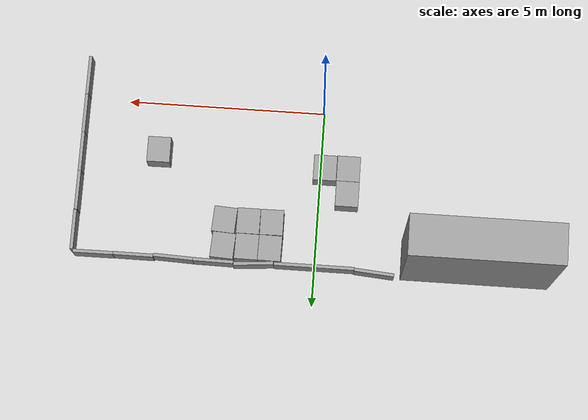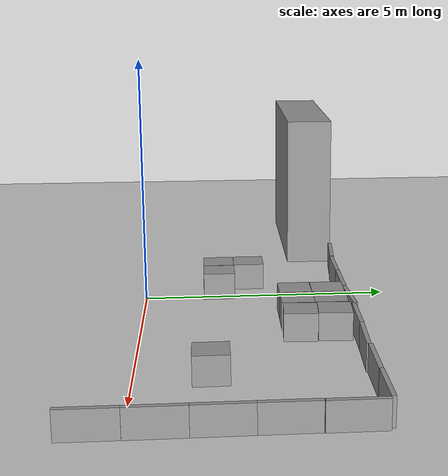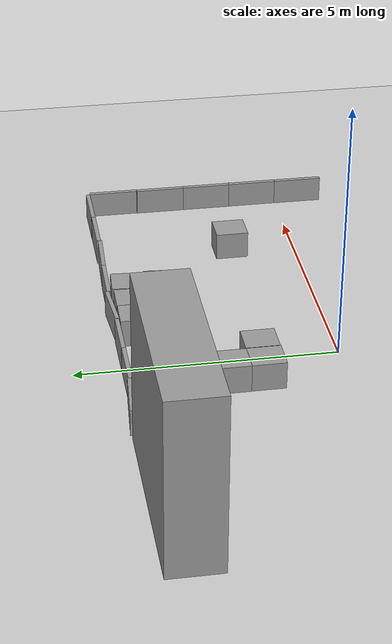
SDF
<sdf version="1.6">
 <world name="default">
  <model name="ground_plane">
   <static>1</static>
   <link name="link">
    <collision name="collision">
     <geometry><plane><normal>0 0 1</normal><size>100 100</size></plane></geometry>
     <surface>
      <contact><collide_bitmask>65535</collide_bitmask></contact>
      <friction><ode><mu>100</mu><mu2>50</mu2></ode></friction>
     </surface>
    </collision>
    <visual name="visual">
     <cast_shadows>0</cast_shadows>
     <geometry><plane><normal>0 0 1</normal><size>100 100</size></plane></geometry>
     <material>
      <script><uri>file://media/materials/scripts/gazebo.material</uri><name>Gazebo/Grey</name></script>
     </material>
    </visual>
   </link>
  </model>
  <model name="panel_5">
   <link name="link">
    <inertial>
     <mass>0.0428479</mass>
     <inertia>
      <ixx>0.00456249</ixx>
      <ixy>0</ixy>
      <ixz>0</ixz>
      <iyy>0.00101543</iyy>
      <iyz>0</iyz>
      <izz>0.00359426</izz>
     </inertia>
    </inertial>
    <pose>-0.996065 -0.479892 0.260289 0 -0 0</pose>
    <visual name="visual">
     <geometry><box><size>0.081299 1 0.527041</size></box></geometry>
     <material>
      <script><name>Gazebo/Grey</name><uri>file://media/materials/scripts/gazebo.material</uri></script>
      <emissive>0 0 0 1</emissive>
      <shader type="vertex"><normal_map>__default__</normal_map></shader>
      <ambient>0.3 0.3 0.3 1</ambient>
      <diffuse>0.7 0.7 0.7 1</diffuse>
      <specular>0.01 0.01 0.01 1</specular>
     </material>
    </visual>
    <collision name="collision">
     <geometry><box><size>0.081299 1 0.527041</size></box></geometry>
     <surface>
      <friction>
       <ode><mu>1</mu><mu2>1</mu2><fdir1>0 0 0</fdir1><slip1>0</slip1><slip2>0</slip2></ode>
       <torsional>
        <coefficient>1</coefficient>
        <patch_radius>0</patch_radius>
        <surface_radius>0</surface_radius>
        <use_patch_radius>1</use_patch_radius>
        <ode><slip>0</slip></ode>
       </torsional>
      </friction>
      <bounce><restitution_coefficient>0</restitution_coefficient><threshold>1e+06</threshold></bounce>
      <contact>
       <collide_without_contact>0</collide_without_contact>
       <collide_without_contact_bitmask>1</collide_without_contact_bitmask>
       <collide_bitmask>1</collide_bitmask>
       <ode>
        <soft_cfm>0</soft_cfm>
        <soft_erp>0.2</soft_erp>
        <kp>1e+13</kp>
        <kd>1</kd>
        <max_vel>0.01</max_vel>
        <min_depth>0</min_depth>
       </ode>
       <bullet>
        <split_impulse>1</split_impulse>
        <split_impulse_penetration_threshold>-0.01</split_impulse_penetration_threshold>
        <soft_cfm>0</soft_cfm>
        <soft_erp>0.2</soft_erp>
        <kp>1e+13</kp>
        <kd>1</kd>
       </bullet>
      </contact>
     </surface>
    </collision>
   </link>
   <static>0</static>
   <allow_auto_disable>0</allow_auto_disable>
   <pose>7.04088 -0.024231 0.003231 1e-06 0 -0.004194</pose>
  </model>
  <model name="panel_6">
   <link name="link">
    <inertial>
     <mass>0.0428479</mass>
     <inertia>
      <ixx>0.00456249</ixx>
      <ixy>0</ixy>
      <ixz>0</ixz>
      <iyy>0.00101543</iyy>
      <iyz>0</iyz>
      <izz>0.00359426</izz>
     </inertia>
    </inertial>
    <pose>-0.996065 -0.479892 0.260289 0 -0 0</pose>
    <visual name="visual">
     <geometry><box><size>0.081299 1 0.527041</size></box></geometry>
     <material>
      <script><name>Gazebo/Grey</name><uri>file://media/materials/scripts/gazebo.material</uri></script>
      <emissive>0 0 0 1</emissive>
      <shader type="vertex"><normal_map>__default__</normal_map></shader>
      <ambient>0.3 0.3 0.3 1</ambient>
      <diffuse>0.7 0.7 0.7 1</diffuse>
      <specular>0.01 0.01 0.01 1</specular>
     </material>
    </visual>
    <collision name="collision">
     <geometry><box><size>0.081299 1 0.527041</size></box></geometry>
     <surface>
      <friction>
       <ode><mu>1</mu><mu2>1</mu2><fdir1>0 0 0</fdir1><slip1>0</slip1><slip2>0</slip2></ode>
       <torsional>
        <coefficient>1</coefficient>
        <patch_radius>0</patch_radius>
        <surface_radius>0</surface_radius>
        <use_patch_radius>1</use_patch_radius>
        <ode><slip>0</slip></ode>
       </torsional>
      </friction>
      <bounce><restitution_coefficient>0</restitution_coefficient><threshold>1e+06</threshold></bounce>
      <contact>
       <collide_without_contact>0</collide_without_contact>
       <collide_without_contact_bitmask>1</collide_without_contact_bitmask>
       <collide_bitmask>1</collide_bitmask>
       <ode>
        <soft_cfm>0</soft_cfm>
        <soft_erp>0.2</soft_erp>
        <kp>1e+13</kp>
        <kd>1</kd>
        <max_vel>0.01</max_vel>
        <min_depth>0</min_depth>
       </ode>
       <bullet>
        <split_impulse>1</split_impulse>
        <split_impulse_penetration_threshold>-0.01</split_impulse_penetration_threshold>
        <soft_cfm>0</soft_cfm>
        <soft_erp>0.2</soft_erp>
        <kp>1e+13</kp>
        <kd>1</kd>
       </bullet>
      </contact>
     </surface>
    </collision>
   </link>
   <static>0</static>
   <allow_auto_disable>0</allow_auto_disable>
   <pose>7.04227 0.98064 0.003225 -6e-06 -0 0.000389</pose>
  </model>
  <model name="panel_7">
   <link name="link">
    <inertial>
     <mass>0.0428479</mass>
     <inertia>
      <ixx>0.00456249</ixx>
      <ixy>0</ixy>
      <ixz>0</ixz>
      <iyy>0.00101543</iyy>
      <iyz>0</iyz>
      <izz>0.00359426</izz>
     </inertia>
    </inertial>
    <pose>-0.996065 -0.479892 0.260289 0 -0 0</pose>
    <visual name="visual">
     <geometry><box><size>0.081299 1 0.527041</size></box></geometry>
     <material>
      <script><name>Gazebo/Grey</name><uri>file://media/materials/scripts/gazebo.material</uri></script>
      <emissive>0 0 0 1</emissive>
      <shader type="vertex"><normal_map>__default__</normal_map></shader>
      <ambient>0.3 0.3 0.3 1</ambient>
      <diffuse>0.7 0.7 0.7 1</diffuse>
      <specular>0.01 0.01 0.01 1</specular>
     </material>
    </visual>
    <collision name="collision">
     <geometry><box><size>0.081299 1 0.527041</size></box></geometry>
     <surface>
      <friction>
       <ode><mu>1</mu><mu2>1</mu2><fdir1>0 0 0</fdir1><slip1>0</slip1><slip2>0</slip2></ode>
       <torsional>
        <coefficient>1</coefficient>
        <patch_radius>0</patch_radius>
        <surface_radius>0</surface_radius>
        <use_patch_radius>1</use_patch_radius>
        <ode><slip>0</slip></ode>
       </torsional>
      </friction>
      <bounce><restitution_coefficient>0</restitution_coefficient><threshold>1e+06</threshold></bounce>
      <contact>
       <collide_without_contact>0</collide_without_contact>
       <collide_without_contact_bitmask>1</collide_without_contact_bitmask>
       <collide_bitmask>1</collide_bitmask>
       <ode>
        <soft_cfm>0</soft_cfm>
        <soft_erp>0.2</soft_erp>
        <kp>1e+13</kp>
        <kd>1</kd>
        <max_vel>0.01</max_vel>
        <min_depth>0</min_depth>
       </ode>
       <bullet>
        <split_impulse>1</split_impulse>
        <split_impulse_penetration_threshold>-0.01</split_impulse_penetration_threshold>
        <soft_cfm>0</soft_cfm>
        <soft_erp>0.2</soft_erp>
        <kp>1e+13</kp>
        <kd>1</kd>
       </bullet>
      </contact>
     </surface>
    </collision>
   </link>
   <static>0</static>
   <allow_auto_disable>0</allow_auto_disable>
   <pose>7.03946 1.98026 0.003231 1e-06 -0 -7.8e-05</pose>
  </model>
  <model name="panel_8">
   <link name="link">
    <inertial>
     <mass>0.0428479</mass>
     <inertia>
      <ixx>0.00456249</ixx>
      <ixy>0</ixy>
      <ixz>0</ixz>
      <iyy>0.00101543</iyy>
      <iyz>0</iyz>
      <izz>0.00359426</izz>
     </inertia>
    </inertial>
    <pose>-0.996065 -0.479892 0.260289 0 -0 0</pose>
    <visual name="visual">
     <geometry><box><size>0.081299 1 0.527041</size></box></geometry>
     <material>
      <script><name>Gazebo/Grey</name><uri>file://media/materials/scripts/gazebo.material</uri></script>
      <emissive>0 0 0 1</emissive>
      <shader type="vertex"><normal_map>__default__</normal_map></shader>
      <ambient>0.3 0.3 0.3 1</ambient>
      <diffuse>0.7 0.7 0.7 1</diffuse>
      <specular>0.01 0.01 0.01 1</specular>
     </material>
    </visual>
    <collision name="collision">
     <geometry><box><size>0.081299 1 0.527041</size></box></geometry>
     <surface>
      <friction>
       <ode><mu>1</mu><mu2>1</mu2><fdir1>0 0 0</fdir1><slip1>0</slip1><slip2>0</slip2></ode>
       <torsional>
        <coefficient>1</coefficient>
        <patch_radius>0</patch_radius>
        <surface_radius>0</surface_radius>
        <use_patch_radius>1</use_patch_radius>
        <ode><slip>0</slip></ode>
       </torsional>
      </friction>
      <bounce><restitution_coefficient>0</restitution_coefficient><threshold>1e+06</threshold></bounce>
      <contact>
       <collide_without_contact>0</collide_without_contact>
       <collide_without_contact_bitmask>1</collide_without_contact_bitmask>
       <collide_bitmask>1</collide_bitmask>
       <ode>
        <soft_cfm>0</soft_cfm>
        <soft_erp>0.2</soft_erp>
        <kp>1e+13</kp>
        <kd>1</kd>
        <max_vel>0.01</max_vel>
        <min_depth>0</min_depth>
       </ode>
       <bullet>
        <split_impulse>1</split_impulse>
        <split_impulse_penetration_threshold>-0.01</split_impulse_penetration_threshold>
        <soft_cfm>0</soft_cfm>
        <soft_erp>0.2</soft_erp>
        <kp>1e+13</kp>
        <kd>1</kd>
       </bullet>
      </contact>
     </surface>
    </collision>
   </link>
   <static>0</static>
   <allow_auto_disable>0</allow_auto_disable>
   <pose>7.03923 2.97769 0.003227 -4e-06 -0 -0.002794</pose>
  </model>
  <model name="panel_13">
   <link name="link">
    <inertial>
     <mass>0.0428479</mass>
     <inertia>
      <ixx>0.00456249</ixx>
      <ixy>0</ixy>
      <ixz>0</ixz>
      <iyy>0.00101543</iyy>
      <iyz>0</iyz>
      <izz>0.00359426</izz>
     </inertia>
    </inertial>
    <pose>-0.996065 -0.479892 0.260289 0 -0 0</pose>
    <visual name="visual">
     <geometry><box><size>0.081299 1 0.527041</size></box></geometry>
     <material>
      <script><name>Gazebo/Grey</name><uri>file://media/materials/scripts/gazebo.material</uri></script>
      <emissive>0 0 0 1</emissive>
      <shader type="vertex"><normal_map>__default__</normal_map></shader>
      <ambient>0.3 0.3 0.3 1</ambient>
      <diffuse>0.7 0.7 0.7 1</diffuse>
      <specular>0.01 0.01 0.01 1</specular>
     </material>
    </visual>
    <collision name="collision">
     <geometry><box><size>0.081299 1 0.527041</size></box></geometry>
     <surface>
      <friction>
       <ode><mu>1</mu><mu2>1</mu2><fdir1>0 0 0</fdir1><slip1>0</slip1><slip2>0</slip2></ode>
       <torsional>
        <coefficient>1</coefficient>
        <patch_radius>0</patch_radius>
        <surface_radius>0</surface_radius>
        <use_patch_radius>1</use_patch_radius>
        <ode><slip>0</slip></ode>
       </torsional>
      </friction>
      <bounce><restitution_coefficient>0</restitution_coefficient><threshold>1e+06</threshold></bounce>
      <contact>
       <collide_without_contact>0</collide_without_contact>
       <collide_without_contact_bitmask>1</collide_without_contact_bitmask>
       <collide_bitmask>1</collide_bitmask>
       <ode>
        <soft_cfm>0</soft_cfm>
        <soft_erp>0.2</soft_erp>
        <kp>1e+13</kp>
        <kd>1</kd>
        <max_vel>0.01</max_vel>
        <min_depth>0</min_depth>
       </ode>
       <bullet>
        <split_impulse>1</split_impulse>
        <split_impulse_penetration_threshold>-0.01</split_impulse_penetration_threshold>
        <soft_cfm>0</soft_cfm>
        <soft_erp>0.2</soft_erp>
        <kp>1e+13</kp>
        <kd>1</kd>
       </bullet>
      </contact>
     </surface>
    </collision>
   </link>
   <static>0</static>
   <allow_auto_disable>0</allow_auto_disable>
   <pose>5.03022 5.04748 0.003232 1e-06 -0 1.57241</pose>
  </model>
  <model name="panel_14">
   <link name="link">
    <inertial>
     <mass>0.0428479</mass>
     <inertia>
      <ixx>0.00456249</ixx>
      <ixy>0</ixy>
      <ixz>0</ixz>
      <iyy>0.00101543</iyy>
      <iyz>0</iyz>
      <izz>0.00359426</izz>
     </inertia>
    </inertial>
    <pose>-0.996065 -0.479892 0.260289 0 -0 0</pose>
    <visual name="visual">
     <geometry><box><size>0.081299 1 0.527041</size></box></geometry>
     <material>
      <script><name>Gazebo/Grey</name><uri>file://media/materials/scripts/gazebo.material</uri></script>
      <emissive>0 0 0 1</emissive>
      <shader type="vertex"><normal_map>__default__</normal_map></shader>
      <ambient>0.3 0.3 0.3 1</ambient>
      <diffuse>0.7 0.7 0.7 1</diffuse>
      <specular>0.01 0.01 0.01 1</specular>
     </material>
    </visual>
    <collision name="collision">
     <geometry><box><size>0.081299 1 0.527041</size></box></geometry>
     <surface>
      <friction>
       <ode><mu>1</mu><mu2>1</mu2><fdir1>0 0 0</fdir1><slip1>0</slip1><slip2>0</slip2></ode>
       <torsional>
        <coefficient>1</coefficient>
        <patch_radius>0</patch_radius>
        <surface_radius>0</surface_radius>
        <use_patch_radius>1</use_patch_radius>
        <ode><slip>0</slip></ode>
       </torsional>
      </friction>
      <bounce><restitution_coefficient>0</restitution_coefficient><threshold>1e+06</threshold></bounce>
      <contact>
       <collide_without_contact>0</collide_without_contact>
       <collide_without_contact_bitmask>1</collide_without_contact_bitmask>
       <collide_bitmask>1</collide_bitmask>
       <ode>
        <soft_cfm>0</soft_cfm>
        <soft_erp>0.2</soft_erp>
        <kp>1e+13</kp>
        <kd>1</kd>
        <max_vel>0.01</max_vel>
        <min_depth>0</min_depth>
       </ode>
       <bullet>
        <split_impulse>1</split_impulse>
        <split_impulse_penetration_threshold>-0.01</split_impulse_penetration_threshold>
        <soft_cfm>0</soft_cfm>
        <soft_erp>0.2</soft_erp>
        <kp>1e+13</kp>
        <kd>1</kd>
       </bullet>
      </contact>
     </surface>
    </collision>
   </link>
   <static>0</static>
   <allow_auto_disable>0</allow_auto_disable>
   <pose>4.98668 3.05059 0.003222 -1e-05 -1e-06 -1.5755</pose>
  </model>
  <model name="panel_14_clone">
   <link name="link">
    <inertial>
     <mass>0.0428479</mass>
     <inertia>
      <ixx>0.00456249</ixx>
      <ixy>0</ixy>
      <ixz>0</ixz>
      <iyy>0.00101543</iyy>
      <iyz>0</iyz>
      <izz>0.00359426</izz>
     </inertia>
    </inertial>
    <pose>-0.996065 -0.479892 0.260289 0 -0 0</pose>
    <visual name="visual">
     <geometry><box><size>0.081299 1 0.527041</size></box></geometry>
     <material>
      <script><name>Gazebo/Grey</name><uri>file://media/materials/scripts/gazebo.material</uri></script>
      <emissive>0 0 0 1</emissive>
      <shader type="vertex"><normal_map>__default__</normal_map></shader>
      <ambient>0.3 0.3 0.3 1</ambient>
      <diffuse>0.7 0.7 0.7 1</diffuse>
      <specular>0.01 0.01 0.01 1</specular>
     </material>
    </visual>
    <collision name="collision">
     <geometry><box><size>0.081299 1 0.527041</size></box></geometry>
     <surface>
      <friction>
       <ode><mu>1</mu><mu2>1</mu2><fdir1>0 0 0</fdir1><slip1>0</slip1><slip2>0</slip2></ode>
       <torsional>
        <coefficient>1</coefficient>
        <patch_radius>0</patch_radius>
        <surface_radius>0</surface_radius>
        <use_patch_radius>1</use_patch_radius>
        <ode><slip>0</slip></ode>
       </torsional>
      </friction>
      <bounce><restitution_coefficient>0</restitution_coefficient><threshold>1e+06</threshold></bounce>
      <contact>
       <collide_without_contact>0</collide_without_contact>
       <collide_without_contact_bitmask>1</collide_without_contact_bitmask>
       <collide_bitmask>1</collide_bitmask>
       <ode>
        <soft_cfm>0</soft_cfm>
        <soft_erp>0.2</soft_erp>
        <kp>1e+13</kp>
        <kd>1</kd>
        <max_vel>0.01</max_vel>
        <min_depth>0</min_depth>
       </ode>
       <bullet>
        <split_impulse>1</split_impulse>
        <split_impulse_penetration_threshold>-0.01</split_impulse_penetration_threshold>
        <soft_cfm>0</soft_cfm>
        <soft_erp>0.2</soft_erp>
        <kp>1e+13</kp>
        <kd>1</kd>
       </bullet>
      </contact>
     </surface>
    </collision>
   </link>
   <static>0</static>
   <allow_auto_disable>0</allow_auto_disable>
   <pose>3.94843 3.03214 0.003228 -4e-06 -0 -1.61229</pose>
  </model>
  <model name="panel_14_clone_0">
   <link name="link">
    <inertial>
     <mass>0.0428479</mass>
     <inertia>
      <ixx>0.00456249</ixx>
      <ixy>0</ixy>
      <ixz>0</ixz>
      <iyy>0.00101543</iyy>
      <iyz>0</iyz>
      <izz>0.00359426</izz>
     </inertia>
    </inertial>
    <pose>-0.996065 -0.479892 0.260289 0 -0 0</pose>
    <visual name="visual">
     <geometry><box><size>0.081299 1 0.527041</size></box></geometry>
     <material>
      <script><name>Gazebo/Grey</name><uri>file://media/materials/scripts/gazebo.material</uri></script>
      <emissive>0 0 0 1</emissive>
      <shader type="vertex"><normal_map>__default__</normal_map></shader>
      <ambient>0.3 0.3 0.3 1</ambient>
      <diffuse>0.7 0.7 0.7 1</diffuse>
      <specular>0.01 0.01 0.01 1</specular>
     </material>
    </visual>
    <collision name="collision">
     <geometry><box><size>0.081299 1 0.527041</size></box></geometry>
     <surface>
      <friction>
       <ode><mu>1</mu><mu2>1</mu2><fdir1>0 0 0</fdir1><slip1>0</slip1><slip2>0</slip2></ode>
       <torsional>
        <coefficient>1</coefficient>
        <patch_radius>0</patch_radius>
        <surface_radius>0</surface_radius>
        <use_patch_radius>1</use_patch_radius>
        <ode><slip>0</slip></ode>
       </torsional>
      </friction>
      <bounce><restitution_coefficient>0</restitution_coefficient><threshold>1e+06</threshold></bounce>
      <contact>
       <collide_without_contact>0</collide_without_contact>
       <collide_without_contact_bitmask>1</collide_without_contact_bitmask>
       <collide_bitmask>1</collide_bitmask>
       <ode>
        <soft_cfm>0</soft_cfm>
        <soft_erp>0.2</soft_erp>
        <kp>1e+13</kp>
        <kd>1</kd>
        <max_vel>0.01</max_vel>
        <min_depth>0</min_depth>
       </ode>
       <bullet>
        <split_impulse>1</split_impulse>
        <split_impulse_penetration_threshold>-0.01</split_impulse_penetration_threshold>
        <soft_cfm>0</soft_cfm>
        <soft_erp>0.2</soft_erp>
        <kp>1e+13</kp>
        <kd>1</kd>
       </bullet>
      </contact>
     </surface>
    </collision>
   </link>
   <static>0</static>
   <allow_auto_disable>0</allow_auto_disable>
   <pose>2.9755 3.0735 0.003228 -4e-06 0 -1.58488</pose>
  </model>
  <model name="panel_14_clone_1">
   <link name="link">
    <inertial>
     <mass>0.0428479</mass>
     <inertia>
      <ixx>0.00456249</ixx>
      <ixy>0</ixy>
      <ixz>0</ixz>
      <iyy>0.00101543</iyy>
      <iyz>0</iyz>
      <izz>0.00359426</izz>
     </inertia>
    </inertial>
    <pose>-0.996065 -0.479892 0.260289 0 -0 0</pose>
    <visual name="visual">
     <geometry><box><size>0.081299 1 0.527041</size></box></geometry>
     <material>
      <script><name>Gazebo/Grey</name><uri>file://media/materials/scripts/gazebo.material</uri></script>
      <emissive>0 0 0 1</emissive>
      <shader type="vertex"><normal_map>__default__</normal_map></shader>
      <ambient>0.3 0.3 0.3 1</ambient>
      <diffuse>0.7 0.7 0.7 1</diffuse>
      <specular>0.01 0.01 0.01 1</specular>
     </material>
    </visual>
    <collision name="collision">
     <geometry><box><size>0.081299 1 0.527041</size></box></geometry>
     <surface>
      <friction>
       <ode><mu>1</mu><mu2>1</mu2><fdir1>0 0 0</fdir1><slip1>0</slip1><slip2>0</slip2></ode>
       <torsional>
        <coefficient>1</coefficient>
        <patch_radius>0</patch_radius>
        <surface_radius>0</surface_radius>
        <use_patch_radius>1</use_patch_radius>
        <ode><slip>0</slip></ode>
       </torsional>
      </friction>
      <bounce><restitution_coefficient>0</restitution_coefficient><threshold>1e+06</threshold></bounce>
      <contact>
       <collide_without_contact>0</collide_without_contact>
       <collide_without_contact_bitmask>1</collide_without_contact_bitmask>
       <collide_bitmask>1</collide_bitmask>
       <ode>
        <soft_cfm>0</soft_cfm>
        <soft_erp>0.2</soft_erp>
        <kp>1e+13</kp>
        <kd>1</kd>
        <max_vel>0.01</max_vel>
        <min_depth>0</min_depth>
       </ode>
       <bullet>
        <split_impulse>1</split_impulse>
        <split_impulse_penetration_threshold>-0.01</split_impulse_penetration_threshold>
        <soft_cfm>0</soft_cfm>
        <soft_erp>0.2</soft_erp>
        <kp>1e+13</kp>
        <kd>1</kd>
       </bullet>
      </contact>
     </surface>
    </collision>
   </link>
   <static>0</static>
   <allow_auto_disable>0</allow_auto_disable>
   <pose>2.06663 3.12643 0.003231 8e-06 -0 -1.49013</pose>
  </model>
  <model name="panel_14_clone_2">
   <link name="link">
    <inertial>
     <mass>0.0428479</mass>
     <inertia>
      <ixx>0.00456249</ixx>
      <ixy>0</ixy>
      <ixz>0</ixz>
      <iyy>0.00101543</iyy>
      <iyz>0</iyz>
      <izz>0.00359426</izz>
     </inertia>
    </inertial>
    <pose>-0.996065 -0.479892 0.260289 0 -0 0</pose>
    <visual name="visual">
     <geometry><box><size>0.081299 1 0.527041</size></box></geometry>
     <material>
      <script><name>Gazebo/Grey</name><uri>file://media/materials/scripts/gazebo.material</uri></script>
      <emissive>0 0 0 1</emissive>
      <shader type="vertex"><normal_map>__default__</normal_map></shader>
      <ambient>0.3 0.3 0.3 1</ambient>
      <diffuse>0.7 0.7 0.7 1</diffuse>
      <specular>0.01 0.01 0.01 1</specular>
     </material>
    </visual>
    <collision name="collision">
     <geometry><box><size>0.081299 1 0.527041</size></box></geometry>
     <surface>
      <friction>
       <ode><mu>1</mu><mu2>1</mu2><fdir1>0 0 0</fdir1><slip1>0</slip1><slip2>0</slip2></ode>
       <torsional>
        <coefficient>1</coefficient>
        <patch_radius>0</patch_radius>
        <surface_radius>0</surface_radius>
        <use_patch_radius>1</use_patch_radius>
        <ode><slip>0</slip></ode>
       </torsional>
      </friction>
      <bounce><restitution_coefficient>0</restitution_coefficient><threshold>1e+06</threshold></bounce>
      <contact>
       <collide_without_contact>0</collide_without_contact>
       <collide_without_contact_bitmask>1</collide_without_contact_bitmask>
       <collide_bitmask>1</collide_bitmask>
       <ode>
        <soft_cfm>0</soft_cfm>
        <soft_erp>0.2</soft_erp>
        <kp>1e+13</kp>
        <kd>1</kd>
        <max_vel>0.01</max_vel>
        <min_depth>0</min_depth>
       </ode>
       <bullet>
        <split_impulse>1</split_impulse>
        <split_impulse_penetration_threshold>-0.01</split_impulse_penetration_threshold>
        <soft_cfm>0</soft_cfm>
        <soft_erp>0.2</soft_erp>
        <kp>1e+13</kp>
        <kd>1</kd>
       </bullet>
      </contact>
     </surface>
    </collision>
   </link>
   <static>0</static>
   <allow_auto_disable>0</allow_auto_disable>
   <pose>0.979904 3.05667 0.00323 -1e-06 -0 -1.57204</pose>
  </model>
  <model name="panel_14_clone_3">
   <link name="link">
    <inertial>
     <mass>0.0428479</mass>
     <inertia>
      <ixx>0.00456249</ixx>
      <ixy>0</ixy>
      <ixz>0</ixz>
      <iyy>0.00101543</iyy>
      <iyz>0</iyz>
      <izz>0.00359426</izz>
     </inertia>
    </inertial>
    <pose>-0.996065 -0.479892 0.260289 0 -0 0</pose>
    <visual name="visual">
     <geometry><box><size>0.081299 1 0.527041</size></box></geometry>
     <material>
      <script><name>Gazebo/Grey</name><uri>file://media/materials/scripts/gazebo.material</uri></script>
      <emissive>0 0 0 1</emissive>
      <shader type="vertex"><normal_map>__default__</normal_map></shader>
      <ambient>0.3 0.3 0.3 1</ambient>
      <diffuse>0.7 0.7 0.7 1</diffuse>
      <specular>0.01 0.01 0.01 1</specular>
     </material>
    </visual>
    <collision name="collision">
     <geometry><box><size>0.081299 1 0.527041</size></box></geometry>
     <surface>
      <friction>
       <ode><mu>1</mu><mu2>1</mu2><fdir1>0 0 0</fdir1><slip1>0</slip1><slip2>0</slip2></ode>
       <torsional>
        <coefficient>1</coefficient>
        <patch_radius>0</patch_radius>
        <surface_radius>0</surface_radius>
        <use_patch_radius>1</use_patch_radius>
        <ode><slip>0</slip></ode>
       </torsional>
      </friction>
      <bounce><restitution_coefficient>0</restitution_coefficient><threshold>1e+06</threshold></bounce>
      <contact>
       <collide_without_contact>0</collide_without_contact>
       <collide_without_contact_bitmask>1</collide_without_contact_bitmask>
       <collide_bitmask>1</collide_bitmask>
       <ode>
        <soft_cfm>0</soft_cfm>
        <soft_erp>0.2</soft_erp>
        <kp>1e+13</kp>
        <kd>1</kd>
        <max_vel>0.01</max_vel>
        <min_depth>0</min_depth>
       </ode>
       <bullet>
        <split_impulse>1</split_impulse>
        <split_impulse_penetration_threshold>-0.01</split_impulse_penetration_threshold>
        <soft_cfm>0</soft_cfm>
        <soft_erp>0.2</soft_erp>
        <kp>1e+13</kp>
        <kd>1</kd>
       </bullet>
      </contact>
     </surface>
    </collision>
   </link>
   <static>0</static>
   <allow_auto_disable>0</allow_auto_disable>
   <pose>-0.019937 3.056 0.003231 6e-06 -0 -1.57183</pose>
  </model>
  <model name="panel_14_clone_4">
   <link name="link">
    <inertial>
     <mass>0.0428479</mass>
     <inertia>
      <ixx>0.00456249</ixx>
      <ixy>0</ixy>
      <ixz>0</ixz>
      <iyy>0.00101543</iyy>
      <iyz>0</iyz>
      <izz>0.00359426</izz>
     </inertia>
    </inertial>
    <pose>-0.996065 -0.479892 0.260289 0 -0 0</pose>
    <visual name="visual">
     <geometry><box><size>0.081299 1 0.527041</size></box></geometry>
     <material>
      <script><name>Gazebo/Grey</name><uri>file://media/materials/scripts/gazebo.material</uri></script>
      <emissive>0 0 0 1</emissive>
      <shader type="vertex"><normal_map>__default__</normal_map></shader>
      <ambient>0.3 0.3 0.3 1</ambient>
      <diffuse>0.7 0.7 0.7 1</diffuse>
      <specular>0.01 0.01 0.01 1</specular>
     </material>
    </visual>
    <collision name="collision">
     <geometry><box><size>0.081299 1 0.527041</size></box></geometry>
     <surface>
      <friction>
       <ode><mu>1</mu><mu2>1</mu2><fdir1>0 0 0</fdir1><slip1>0</slip1><slip2>0</slip2></ode>
       <torsional>
        <coefficient>1</coefficient>
        <patch_radius>0</patch_radius>
        <surface_radius>0</surface_radius>
        <use_patch_radius>1</use_patch_radius>
        <ode><slip>0</slip></ode>
       </torsional>
      </friction>
      <bounce><restitution_coefficient>0</restitution_coefficient><threshold>1e+06</threshold></bounce>
      <contact>
       <collide_without_contact>0</collide_without_contact>
       <collide_without_contact_bitmask>1</collide_without_contact_bitmask>
       <collide_bitmask>1</collide_bitmask>
       <ode>
        <soft_cfm>0</soft_cfm>
        <soft_erp>0.2</soft_erp>
        <kp>1e+13</kp>
        <kd>1</kd>
        <max_vel>0.01</max_vel>
        <min_depth>0</min_depth>
       </ode>
       <bullet>
        <split_impulse>1</split_impulse>
        <split_impulse_penetration_threshold>-0.01</split_impulse_penetration_threshold>
        <soft_cfm>0</soft_cfm>
        <soft_erp>0.2</soft_erp>
        <kp>1e+13</kp>
        <kd>1</kd>
       </bullet>
      </contact>
     </surface>
    </collision>
   </link>
   <static>0</static>
   <allow_auto_disable>0</allow_auto_disable>
   <pose>-1.10574 3.07917 0.003232 4e-06 -0 -1.65518</pose>
  </model>
  <model name="wall_4_1_3">
   <link name="link">
    <inertial>
     <mass>12.3337</mass>
     <inertia><ixx>12.5329</ixx><ixy>0</ixy><ixz>0</ixz><iyy>25.4731</iyy><iyz>0</iyz><izz>14.9958</izz></inertia>
    </inertial>
    <pose>-2.9941 -0.388092 1.21174 0 -0 0</pose>
    <visual name="visual">
     <geometry><box><size>3.68647 1 3.34571</size></box></geometry>
     <material>
      <script><name>Gazebo/Grey</name><uri>file://media/materials/scripts/gazebo.material</uri></script>
     </material>
    </visual>
    <collision name="collision">
     <geometry><box><size>3.68647 1 3.34571</size></box></geometry>
     <surface>
      <friction>
       <ode><mu>1</mu><mu2>1</mu2><fdir1>0 0 0</fdir1><slip1>0</slip1><slip2>0</slip2></ode>
       <torsional>
        <coefficient>1</coefficient>
        <patch_radius>0</patch_radius>
        <surface_radius>0</surface_radius>
        <use_patch_radius>1</use_patch_radius>
        <ode><slip>0</slip></ode>
       </torsional>
      </friction>
      <bounce><restitution_coefficient>0</restitution_coefficient><threshold>1e+06</threshold></bounce>
      <contact>
       <collide_without_contact>0</collide_without_contact>
       <collide_without_contact_bitmask>1</collide_without_contact_bitmask>
       <collide_bitmask>1</collide_bitmask>
       <ode>
        <soft_cfm>0</soft_cfm>
        <soft_erp>0.2</soft_erp>
        <kp>1e+13</kp>
        <kd>1</kd>
        <max_vel>0.01</max_vel>
        <min_depth>0</min_depth>
       </ode>
       <bullet>
        <split_impulse>1</split_impulse>
        <split_impulse_penetration_threshold>-0.01</split_impulse_penetration_threshold>
        <soft_cfm>0</soft_cfm>
        <soft_erp>0.2</soft_erp>
        <kp>1e+13</kp>
        <kd>1</kd>
       </bullet>
      </contact>
     </surface>
    </collision>
   </link>
   <static>1</static>
   <allow_auto_disable>0</allow_auto_disable>
   <pose>-1.01297 4.06271 0.5 0 -0 0</pose>
  </model>
  <model name="panel_8_clone">
   <link name="link">
    <inertial>
     <mass>0.0428479</mass>
     <inertia>
      <ixx>0.00456249</ixx>
      <ixy>0</ixy>
      <ixz>0</ixz>
      <iyy>0.00101543</iyy>
      <iyz>0</iyz>
      <izz>0.00359426</izz>
     </inertia>
    </inertial>
    <pose>-0.996065 -0.479892 0.260289 0 -0 0</pose>
    <visual name="visual">
     <geometry><box><size>0.081299 1 0.527041</size></box></geometry>
     <material>
      <script><name>Gazebo/Grey</name><uri>file://media/materials/scripts/gazebo.material</uri></script>
      <emissive>0 0 0 1</emissive>
      <shader type="vertex"><normal_map>__default__</normal_map></shader>
      <ambient>0.3 0.3 0.3 1</ambient>
      <diffuse>0.7 0.7 0.7 1</diffuse>
      <specular>0.01 0.01 0.01 1</specular>
     </material>
    </visual>
    <collision name="collision">
     <geometry><box><size>0.081299 1 0.527041</size></box></geometry>
     <surface>
      <friction>
       <ode><mu>1</mu><mu2>1</mu2><fdir1>0 0 0</fdir1><slip1>0</slip1><slip2>0</slip2></ode>
       <torsional>
        <coefficient>1</coefficient>
        <patch_radius>0</patch_radius>
        <surface_radius>0</surface_radius>
        <use_patch_radius>1</use_patch_radius>
        <ode><slip>0</slip></ode>
       </torsional>
      </friction>
      <bounce><restitution_coefficient>0</restitution_coefficient><threshold>1e+06</threshold></bounce>
      <contact>
       <collide_without_contact>0</collide_without_contact>
       <collide_without_contact_bitmask>1</collide_without_contact_bitmask>
       <collide_bitmask>1</collide_bitmask>
       <ode>
        <soft_cfm>0</soft_cfm>
        <soft_erp>0.2</soft_erp>
        <kp>1e+13</kp>
        <kd>1</kd>
        <max_vel>0.01</max_vel>
        <min_depth>0</min_depth>
       </ode>
       <bullet>
        <split_impulse>1</split_impulse>
        <split_impulse_penetration_threshold>-0.01</split_impulse_penetration_threshold>
        <soft_cfm>0</soft_cfm>
        <soft_erp>0.2</soft_erp>
        <kp>1e+13</kp>
        <kd>1</kd>
       </bullet>
      </contact>
     </surface>
    </collision>
   </link>
   <static>0</static>
   <allow_auto_disable>0</allow_auto_disable>
   <pose>7.04822 3.99084 0.00323 -0 1e-06 -0.001322</pose>
  </model>
  <model name="box_level5_clone_14_clone">
   <link name="link">
    <inertial>
     <mass>0.207385</mass>
     <inertia>
      <ixx>0.0125184</ixx>
      <ixy>0</ixy>
      <ixz>0</ixz>
      <iyy>0.0111102</iyy>
      <iyz>0</iyz>
      <izz>0.0130087</izz>
     </inertia>
    </inertial>
    <visual name="visual">
     <geometry><box><size>0.579331 0.645836 0.554302</size></box></geometry>
     <material>
      <script><name>Gazebo/Grey</name><uri>file://media/materials/scripts/gazebo.material</uri></script>
     </material>
    </visual>
    <collision name="collision">
     <geometry><box><size>0.579331 0.645836 0.554302</size></box></geometry>
     <surface>
      <friction>
       <ode><mu>1</mu><mu2>1</mu2><fdir1>0 0 0</fdir1><slip1>0</slip1><slip2>0</slip2></ode>
       <torsional>
        <coefficient>1</coefficient>
        <patch_radius>0</patch_radius>
        <surface_radius>0</surface_radius>
        <use_patch_radius>1</use_patch_radius>
        <ode><slip>0</slip></ode>
       </torsional>
      </friction>
      <bounce><restitution_coefficient>0</restitution_coefficient><threshold>1e+06</threshold></bounce>
      <contact>
       <collide_without_contact>0</collide_without_contact>
       <collide_without_contact_bitmask>1</collide_without_contact_bitmask>
       <collide_bitmask>1</collide_bitmask>
       <ode>
        <soft_cfm>0</soft_cfm>
        <soft_erp>0.2</soft_erp>
        <kp>1e+13</kp>
        <kd>1</kd>
        <max_vel>0.01</max_vel>
        <min_depth>0</min_depth>
       </ode>
       <bullet>
        <split_impulse>1</split_impulse>
        <split_impulse_penetration_threshold>-0.01</split_impulse_penetration_threshold>
        <soft_cfm>0</soft_cfm>
        <soft_erp>0.2</soft_erp>
        <kp>1e+13</kp>
        <kd>1</kd>
       </bullet>
      </contact>
     </surface>
    </collision>
   </link>
   <static>0</static>
   <pose>-0.707303 1.5272 0.277151 0 -0 8.4e-05</pose>
  </model>
  <model name="box_level5_clone_14_clone_0">
   <link name="link">
    <inertial>
     <mass>0.207385</mass>
     <inertia>
      <ixx>0.0125184</ixx>
      <ixy>0</ixy>
      <ixz>0</ixz>
      <iyy>0.0111102</iyy>
      <iyz>0</iyz>
      <izz>0.0130087</izz>
     </inertia>
    </inertial>
    <visual name="visual">
     <geometry><box><size>0.579331 0.645836 0.554302</size></box></geometry>
     <material>
      <script><name>Gazebo/Grey</name><uri>file://media/materials/scripts/gazebo.material</uri></script>
     </material>
    </visual>
    <collision name="collision">
     <geometry><box><size>0.579331 0.645836 0.554302</size></box></geometry>
     <surface>
      <friction>
       <ode><mu>1</mu><mu2>1</mu2><fdir1>0 0 0</fdir1><slip1>0</slip1><slip2>0</slip2></ode>
       <torsional>
        <coefficient>1</coefficient>
        <patch_radius>0</patch_radius>
        <surface_radius>0</surface_radius>
        <use_patch_radius>1</use_patch_radius>
        <ode><slip>0</slip></ode>
       </torsional>
      </friction>
      <bounce><restitution_coefficient>0</restitution_coefficient><threshold>1e+06</threshold></bounce>
      <contact>
       <collide_without_contact>0</collide_without_contact>
       <collide_without_contact_bitmask>1</collide_without_contact_bitmask>
       <collide_bitmask>1</collide_bitmask>
       <ode>
        <soft_cfm>0</soft_cfm>
        <soft_erp>0.2</soft_erp>
        <kp>1e+13</kp>
        <kd>1</kd>
        <max_vel>0.01</max_vel>
        <min_depth>0</min_depth>
       </ode>
       <bullet>
        <split_impulse>1</split_impulse>
        <split_impulse_penetration_threshold>-0.01</split_impulse_penetration_threshold>
        <soft_cfm>0</soft_cfm>
        <soft_erp>0.2</soft_erp>
        <kp>1e+13</kp>
        <kd>1</kd>
       </bullet>
      </contact>
     </surface>
    </collision>
   </link>
   <static>0</static>
   <pose>-0.711 2.17357 0.277151 0 -0 -0.001346</pose>
  </model>
  <model name="box_level5_clone_14_clone_1">
   <link name="link">
    <inertial>
     <mass>0.207385</mass>
     <inertia>
      <ixx>0.0125184</ixx>
      <ixy>0</ixy>
      <ixz>0</ixz>
      <iyy>0.0111102</iyy>
      <iyz>0</iyz>
      <izz>0.0130087</izz>
     </inertia>
    </inertial>
    <visual name="visual">
     <geometry><box><size>0.579331 0.645836 0.554302</size></box></geometry>
     <material>
      <script><name>Gazebo/Grey</name><uri>file://media/materials/scripts/gazebo.material</uri></script>
     </material>
    </visual>
    <collision name="collision">
     <geometry><box><size>0.579331 0.645836 0.554302</size></box></geometry>
     <surface>
      <friction>
       <ode><mu>1</mu><mu2>1</mu2><fdir1>0 0 0</fdir1><slip1>0</slip1><slip2>0</slip2></ode>
       <torsional>
        <coefficient>1</coefficient>
        <patch_radius>0</patch_radius>
        <surface_radius>0</surface_radius>
        <use_patch_radius>1</use_patch_radius>
        <ode><slip>0</slip></ode>
       </torsional>
      </friction>
      <bounce><restitution_coefficient>0</restitution_coefficient><threshold>1e+06</threshold></bounce>
      <contact>
       <collide_without_contact>0</collide_without_contact>
       <collide_without_contact_bitmask>1</collide_without_contact_bitmask>
       <collide_bitmask>1</collide_bitmask>
       <ode>
        <soft_cfm>0</soft_cfm>
        <soft_erp>0.2</soft_erp>
        <kp>1e+13</kp>
        <kd>1</kd>
        <max_vel>0.01</max_vel>
        <min_depth>0</min_depth>
       </ode>
       <bullet>
        <split_impulse>1</split_impulse>
        <split_impulse_penetration_threshold>-0.01</split_impulse_penetration_threshold>
        <soft_cfm>0</soft_cfm>
        <soft_erp>0.2</soft_erp>
        <kp>1e+13</kp>
        <kd>1</kd>
       </bullet>
      </contact>
     </surface>
    </collision>
   </link>
   <static>0</static>
   <pose>-0.117573 1.53554 0.277148 6e-06 -4e-06 6.7e-05</pose>
  </model>
  <model name="box_level5_clone_14_clone_2">
   <link name="link">
    <inertial>
     <mass>0.207385</mass>
     <inertia>
      <ixx>0.0125184</ixx>
      <ixy>0</ixy>
      <ixz>0</ixz>
      <iyy>0.0111102</iyy>
      <iyz>0</iyz>
      <izz>0.0130087</izz>
     </inertia>
    </inertial>
    <visual name="visual">
     <geometry><box><size>0.579331 0.645836 0.554302</size></box></geometry>
     <material>
      <script><name>Gazebo/Grey</name><uri>file://media/materials/scripts/gazebo.material</uri></script>
     </material>
    </visual>
    <collision name="collision">
     <geometry><box><size>0.579331 0.645836 0.554302</size></box></geometry>
     <surface>
      <friction>
       <ode><mu>1</mu><mu2>1</mu2><fdir1>0 0 0</fdir1><slip1>0</slip1><slip2>0</slip2></ode>
       <torsional>
        <coefficient>1</coefficient>
        <patch_radius>0</patch_radius>
        <surface_radius>0</surface_radius>
        <use_patch_radius>1</use_patch_radius>
        <ode><slip>0</slip></ode>
       </torsional>
      </friction>
      <bounce><restitution_coefficient>0</restitution_coefficient><threshold>1e+06</threshold></bounce>
      <contact>
       <collide_without_contact>0</collide_without_contact>
       <collide_without_contact_bitmask>1</collide_without_contact_bitmask>
       <collide_bitmask>1</collide_bitmask>
       <ode>
        <soft_cfm>0</soft_cfm>
        <soft_erp>0.2</soft_erp>
        <kp>1e+13</kp>
        <kd>1</kd>
        <max_vel>0.01</max_vel>
        <min_depth>0</min_depth>
       </ode>
       <bullet>
        <split_impulse>1</split_impulse>
        <split_impulse_penetration_threshold>-0.01</split_impulse_penetration_threshold>
        <soft_cfm>0</soft_cfm>
        <soft_erp>0.2</soft_erp>
        <kp>1e+13</kp>
        <kd>1</kd>
       </bullet>
      </contact>
     </surface>
    </collision>
   </link>
   <static>0</static>
   <pose>1.12264 3.67509 0.277151 0 0 -0.0156</pose>
  </model>
  <model name="box_level5_clone_14_clone_3">
   <link name="link">
    <inertial>
     <mass>0.207385</mass>
     <inertia>
      <ixx>0.0125184</ixx>
      <ixy>0</ixy>
      <ixz>0</ixz>
      <iyy>0.0111102</iyy>
      <iyz>0</iyz>
      <izz>0.0130087</izz>
     </inertia>
    </inertial>
    <visual name="visual">
     <geometry><box><size>0.579331 0.645836 0.554302</size></box></geometry>
     <material>
      <script><name>Gazebo/Grey</name><uri>file://media/materials/scripts/gazebo.material</uri></script>
     </material>
    </visual>
    <collision name="collision">
     <geometry><box><size>0.579331 0.645836 0.554302</size></box></geometry>
     <surface>
      <friction>
       <ode><mu>1</mu><mu2>1</mu2><fdir1>0 0 0</fdir1><slip1>0</slip1><slip2>0</slip2></ode>
       <torsional>
        <coefficient>1</coefficient>
        <patch_radius>0</patch_radius>
        <surface_radius>0</surface_radius>
        <use_patch_radius>1</use_patch_radius>
        <ode><slip>0</slip></ode>
       </torsional>
      </friction>
      <bounce><restitution_coefficient>0</restitution_coefficient><threshold>1e+06</threshold></bounce>
      <contact>
       <collide_without_contact>0</collide_without_contact>
       <collide_without_contact_bitmask>1</collide_without_contact_bitmask>
       <collide_bitmask>1</collide_bitmask>
       <ode>
        <soft_cfm>0</soft_cfm>
        <soft_erp>0.2</soft_erp>
        <kp>1e+13</kp>
        <kd>1</kd>
        <max_vel>0.01</max_vel>
        <min_depth>0</min_depth>
       </ode>
       <bullet>
        <split_impulse>1</split_impulse>
        <split_impulse_penetration_threshold>-0.01</split_impulse_penetration_threshold>
        <soft_cfm>0</soft_cfm>
        <soft_erp>0.2</soft_erp>
        <kp>1e+13</kp>
        <kd>1</kd>
       </bullet>
      </contact>
     </surface>
    </collision>
   </link>
   <static>0</static>
   <pose>1.70314 3.67203 0.277151 0 0 -0.015144</pose>
  </model>
  <model name="box_level5_clone_14_clone_4">
   <link name="link">
    <inertial>
     <mass>0.207385</mass>
     <inertia>
      <ixx>0.0125184</ixx>
      <ixy>0</ixy>
      <ixz>0</ixz>
      <iyy>0.0111102</iyy>
      <iyz>0</iyz>
      <izz>0.0130087</izz>
     </inertia>
    </inertial>
    <visual name="visual">
     <geometry><box><size>0.579331 0.645836 0.554302</size></box></geometry>
     <material>
      <script><name>Gazebo/Grey</name><uri>file://media/materials/scripts/gazebo.material</uri></script>
     </material>
    </visual>
    <collision name="collision">
     <geometry><box><size>0.579331 0.645836 0.554302</size></box></geometry>
     <surface>
      <friction>
       <ode><mu>1</mu><mu2>1</mu2><fdir1>0 0 0</fdir1><slip1>0</slip1><slip2>0</slip2></ode>
       <torsional>
        <coefficient>1</coefficient>
        <patch_radius>0</patch_radius>
        <surface_radius>0</surface_radius>
        <use_patch_radius>1</use_patch_radius>
        <ode><slip>0</slip></ode>
       </torsional>
      </friction>
      <bounce><restitution_coefficient>0</restitution_coefficient><threshold>1e+06</threshold></bounce>
      <contact>
       <collide_without_contact>0</collide_without_contact>
       <collide_without_contact_bitmask>1</collide_without_contact_bitmask>
       <collide_bitmask>1</collide_bitmask>
       <ode>
        <soft_cfm>0</soft_cfm>
        <soft_erp>0.2</soft_erp>
        <kp>1e+13</kp>
        <kd>1</kd>
        <max_vel>0.01</max_vel>
        <min_depth>0</min_depth>
       </ode>
       <bullet>
        <split_impulse>1</split_impulse>
        <split_impulse_penetration_threshold>-0.01</split_impulse_penetration_threshold>
        <soft_cfm>0</soft_cfm>
        <soft_erp>0.2</soft_erp>
        <kp>1e+13</kp>
        <kd>1</kd>
       </bullet>
      </contact>
     </surface>
    </collision>
   </link>
   <static>0</static>
   <pose>2.29646 3.67813 0.277147 1.3e-05 2e-06 -0.058809</pose>
  </model>
  <model name="box_level5_clone_14_clone_5">
   <link name="link">
    <inertial>
     <mass>0.207385</mass>
     <inertia>
      <ixx>0.0125184</ixx>
      <ixy>0</ixy>
      <ixz>0</ixz>
      <iyy>0.0111102</iyy>
      <iyz>0</iyz>
      <izz>0.0130087</izz>
     </inertia>
    </inertial>
    <visual name="visual">
     <geometry><box><size>0.579331 0.645836 0.554302</size></box></geometry>
     <material>
      <script><name>Gazebo/Grey</name><uri>file://media/materials/scripts/gazebo.material</uri></script>
     </material>
    </visual>
    <collision name="collision">
     <geometry><box><size>0.579331 0.645836 0.554302</size></box></geometry>
     <surface>
      <friction>
       <ode><mu>1</mu><mu2>1</mu2><fdir1>0 0 0</fdir1><slip1>0</slip1><slip2>0</slip2></ode>
       <torsional>
        <coefficient>1</coefficient>
        <patch_radius>0</patch_radius>
        <surface_radius>0</surface_radius>
        <use_patch_radius>1</use_patch_radius>
        <ode><slip>0</slip></ode>
       </torsional>
      </friction>
      <bounce><restitution_coefficient>0</restitution_coefficient><threshold>1e+06</threshold></bounce>
      <contact>
       <collide_without_contact>0</collide_without_contact>
       <collide_without_contact_bitmask>1</collide_without_contact_bitmask>
       <collide_bitmask>1</collide_bitmask>
       <ode>
        <soft_cfm>0</soft_cfm>
        <soft_erp>0.2</soft_erp>
        <kp>1e+13</kp>
        <kd>1</kd>
        <max_vel>0.01</max_vel>
        <min_depth>0</min_depth>
       </ode>
       <bullet>
        <split_impulse>1</split_impulse>
        <split_impulse_penetration_threshold>-0.01</split_impulse_penetration_threshold>
        <soft_cfm>0</soft_cfm>
        <soft_erp>0.2</soft_erp>
        <kp>1e+13</kp>
        <kd>1</kd>
       </bullet>
      </contact>
     </surface>
    </collision>
   </link>
   <static>0</static>
   <pose>4.09188 1.33159 0.277151 0 -0 0.007628</pose>
  </model>
  <model name="box_level5_clone_14_clone_6">
   <link name="link">
    <inertial>
     <mass>0.207385</mass>
     <inertia>
      <ixx>0.0125184</ixx>
      <ixy>0</ixy>
      <ixz>0</ixz>
      <iyy>0.0111102</iyy>
      <iyz>0</iyz>
      <izz>0.0130087</izz>
     </inertia>
    </inertial>
    <visual name="visual">
     <geometry><box><size>0.579331 0.645836 0.554302</size></box></geometry>
     <material>
      <script><name>Gazebo/Grey</name><uri>file://media/materials/scripts/gazebo.material</uri></script>
     </material>
    </visual>
    <collision name="collision">
     <geometry><box><size>0.579331 0.645836 0.554302</size></box></geometry>
     <surface>
      <friction>
       <ode><mu>1</mu><mu2>1</mu2><fdir1>0 0 0</fdir1><slip1>0</slip1><slip2>0</slip2></ode>
       <torsional>
        <coefficient>1</coefficient>
        <patch_radius>0</patch_radius>
        <surface_radius>0</surface_radius>
        <use_patch_radius>1</use_patch_radius>
        <ode><slip>0</slip></ode>
       </torsional>
      </friction>
      <bounce><restitution_coefficient>0</restitution_coefficient><threshold>1e+06</threshold></bounce>
      <contact>
       <collide_without_contact>0</collide_without_contact>
       <collide_without_contact_bitmask>1</collide_without_contact_bitmask>
       <collide_bitmask>1</collide_bitmask>
       <ode>
        <soft_cfm>0</soft_cfm>
        <soft_erp>0.2</soft_erp>
        <kp>1e+13</kp>
        <kd>1</kd>
        <max_vel>0.01</max_vel>
        <min_depth>0</min_depth>
       </ode>
       <bullet>
        <split_impulse>1</split_impulse>
        <split_impulse_penetration_threshold>-0.01</split_impulse_penetration_threshold>
        <soft_cfm>0</soft_cfm>
        <soft_erp>0.2</soft_erp>
        <kp>1e+13</kp>
        <kd>1</kd>
       </bullet>
      </contact>
     </surface>
    </collision>
   </link>
   <static>0</static>
   <pose>2.30321 3.02698 0.277149 -6e-06 -0 -0.06605</pose>
  </model>
  <model name="box_level5_clone_14_clone_7">
   <link name="link">
    <inertial>
     <mass>0.207385</mass>
     <inertia>
      <ixx>0.0125184</ixx>
      <ixy>0</ixy>
      <ixz>0</ixz>
      <iyy>0.0111102</iyy>
      <iyz>0</iyz>
      <izz>0.0130087</izz>
     </inertia>
    </inertial>
    <visual name="visual">
     <geometry><box><size>0.579331 0.645836 0.554302</size></box></geometry>
     <material>
      <script><name>Gazebo/Grey</name><uri>file://media/materials/scripts/gazebo.material</uri></script>
     </material>
    </visual>
    <collision name="collision">
     <geometry><box><size>0.579331 0.645836 0.554302</size></box></geometry>
     <surface>
      <friction>
       <ode><mu>1</mu><mu2>1</mu2><fdir1>0 0 0</fdir1><slip1>0</slip1><slip2>0</slip2></ode>
       <torsional>
        <coefficient>1</coefficient>
        <patch_radius>0</patch_radius>
        <surface_radius>0</surface_radius>
        <use_patch_radius>1</use_patch_radius>
        <ode><slip>0</slip></ode>
       </torsional>
      </friction>
      <bounce><restitution_coefficient>0</restitution_coefficient><threshold>1e+06</threshold></bounce>
      <contact>
       <collide_without_contact>0</collide_without_contact>
       <collide_without_contact_bitmask>1</collide_without_contact_bitmask>
       <collide_bitmask>1</collide_bitmask>
       <ode>
        <soft_cfm>0</soft_cfm>
        <soft_erp>0.2</soft_erp>
        <kp>1e+13</kp>
        <kd>1</kd>
        <max_vel>0.01</max_vel>
        <min_depth>0</min_depth>
       </ode>
       <bullet>
        <split_impulse>1</split_impulse>
        <split_impulse_penetration_threshold>-0.01</split_impulse_penetration_threshold>
        <soft_cfm>0</soft_cfm>
        <soft_erp>0.2</soft_erp>
        <kp>1e+13</kp>
        <kd>1</kd>
       </bullet>
      </contact>
     </surface>
    </collision>
   </link>
   <static>0</static>
   <pose>1.70413 3.02296 0.277144 -4e-06 -4e-06 -0.003942</pose>
  </model>
  <model name="box_level5_clone_14_clone_8">
   <link name="link">
    <inertial>
     <mass>0.207385</mass>
     <inertia>
      <ixx>0.0125184</ixx>
      <ixy>0</ixy>
      <ixz>0</ixz>
      <iyy>0.0111102</iyy>
      <iyz>0</iyz>
      <izz>0.0130087</izz>
     </inertia>
    </inertial>
    <visual name="visual">
     <geometry><box><size>0.579331 0.645836 0.554302</size></box></geometry>
     <material>
      <script><name>Gazebo/Grey</name><uri>file://media/materials/scripts/gazebo.material</uri></script>
     </material>
    </visual>
    <collision name="collision">
     <geometry><box><size>0.579331 0.645836 0.554302</size></box></geometry>
     <surface>
      <friction>
       <ode><mu>1</mu><mu2>1</mu2><fdir1>0 0 0</fdir1><slip1>0</slip1><slip2>0</slip2></ode>
       <torsional>
        <coefficient>1</coefficient>
        <patch_radius>0</patch_radius>
        <surface_radius>0</surface_radius>
        <use_patch_radius>1</use_patch_radius>
        <ode><slip>0</slip></ode>
       </torsional>
      </friction>
      <bounce><restitution_coefficient>0</restitution_coefficient><threshold>1e+06</threshold></bounce>
      <contact>
       <collide_without_contact>0</collide_without_contact>
       <collide_without_contact_bitmask>1</collide_without_contact_bitmask>
       <collide_bitmask>1</collide_bitmask>
       <ode>
        <soft_cfm>0</soft_cfm>
        <soft_erp>0.2</soft_erp>
        <kp>1e+13</kp>
        <kd>1</kd>
        <max_vel>0.01</max_vel>
        <min_depth>0</min_depth>
       </ode>
       <bullet>
        <split_impulse>1</split_impulse>
        <split_impulse_penetration_threshold>-0.01</split_impulse_penetration_threshold>
        <soft_cfm>0</soft_cfm>
        <soft_erp>0.2</soft_erp>
        <kp>1e+13</kp>
        <kd>1</kd>
       </bullet>
      </contact>
     </surface>
    </collision>
   </link>
   <static>0</static>
   <pose>1.12021 3.02281 0.277148 6e-06 4e-06 0.006739</pose>
  </model>
 </world>
</sdf>
